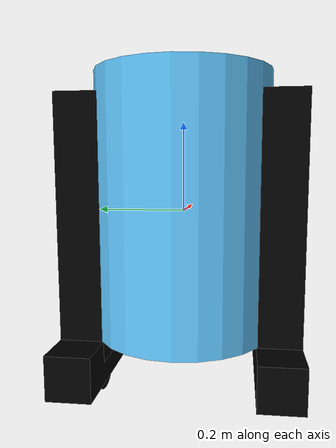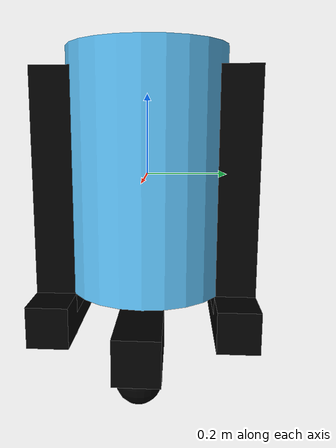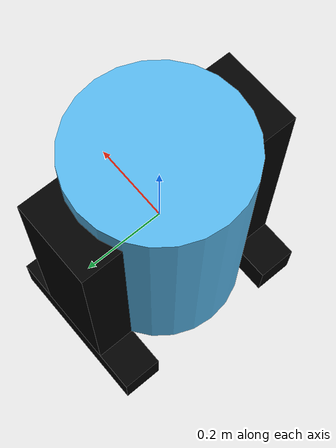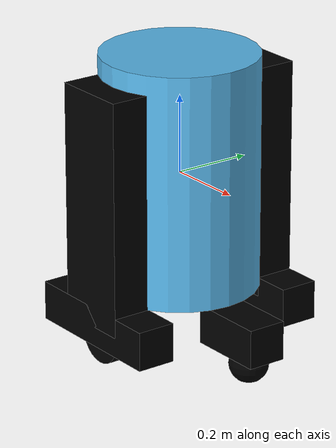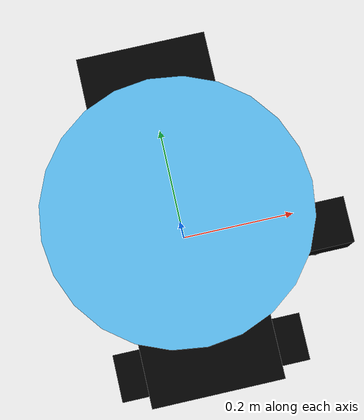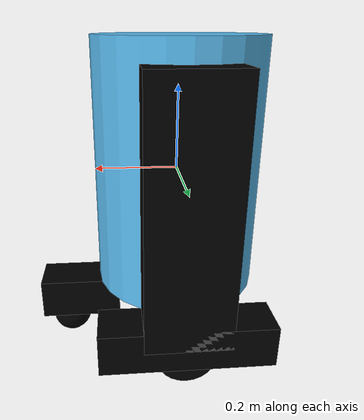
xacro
<?xml version="1.0" ?>
<robot name="r2d2" xmlns:xacro="http://ros.org/wiki/xacro">
    <xacro:include filename="$(find r2d2_description)/urdf/gazebo.xacro" />
    <xacro:include filename="$(find r2d2_description)/urdf/material.xacro" />
    <xacro:include filename="$(find r2d2_description)/urdf/macro.xacro" />

    <link name="base_footprint" />

    <joint name="base_joint" type="fixed">
        <parent link="base_footprint" />
        <child link="base_link" />
        <origin xyz="0.0 0.0 0.010" rpy="0 0 0" />
    </joint>

    <link name="base_link">
        <xacro:default_inertial mass="10" />
        <visual>
            <geometry>
                <cylinder radius="${body_radius}" length="${body_len}" />
            </geometry>
            <material name="body" />
        </visual>
        <collision>
            <geometry>
                <cylinder radius="${body_radius}" length="${body_len}" />
            </geometry>
        </collision>

        <!-- chassis base -->
        <visual>
            <origin xyz="0.25 0 -${leglen/2 + .05}" rpy="0 0 0" />
            <geometry>
                <box size="0.2 0.1 0.1" />
            </geometry>
            <material name="black" />
        </visual>

        <collision name="collision_chassis">
            <origin xyz="0.25 0 -${leglen/2 + .05}" rpy="0 0 0" />
            <geometry>
                <box size="0.2 ${baselen} 0.1" />
            </geometry>
        </collision>

        <!-- caster front -->
        <visual name="caster_front_visual">
            <origin xyz="0.28 0 -0.42" rpy=" 0 0 0" />
            <geometry>
                <sphere radius="0.05" />
            </geometry>
            <material name="black" />
        </visual>

        <collision name="caster_front_collision">
            <origin xyz="0.28 0 -0.42" rpy=" 0 0 0" />
            <geometry>
                <sphere radius="0.05" />
            </geometry>
            <surface>
                <friction>
                    <ode>
                        <mu>0</mu>
                        <mu2>0</mu2>
                        <slip1>1.0</slip1>
                        <slip2>1.0</slip2>
                    </ode>
                </friction>
            </surface>
        </collision>

    </link>

    <xacro:leg prefix="right" reflect="-1" />
    <xacro:leg prefix="left" reflect="1" />

</robot>

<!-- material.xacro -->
<robot name="material_properties" xmlns:xacro="http://ros.org/wiki/xacro">

    <!-- material colors -->
    <material name="white">
        <color rgba="1 1 1 1" />
    </material>

    <material name="black">
        <color rgba="0.0 0.0 0.0 1" />
    </material>

    <!-- material textures -->
    <material name="head">
        <texture filename="package://r2d2_description/media/materials/textures/head.jpg" />
    </material>

    <material name="eye">
        <texture filename="package://r2d2_description/media/materials/textures/eye.jpg" />
    </material>

    <material name="body">
        <texture filename="package://r2d2_description/media/materials/textures/body.png" />
    </material>

    <material name="leg">
        <texture filename="package://r2d2_description/media/materials/textures/leg.jpg" />
    </material>

</robot>

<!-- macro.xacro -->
<robot name="macroed" xmlns:xacro="http://ros.org/wiki/xacro">

    <xacro:property name="body_len" value="0.6" />
    <xacro:property name="body_radius" value="0.2" />
    <xacro:property name="leglen" value="0.6" />
    <xacro:property name="polelen" value="0.2" />
    <xacro:property name="baselen" value="0.4" />
    <xacro:property name="wheeldim" value="0.07" />

    <!-- default inertial -->
    <xacro:macro name="default_inertial" params="mass">
        <inertial>
            <origin xyz="0.0 0.0 0.0" rpy="0.0 0.0 0.0" />
            <mass value="${mass}" />
            <inertia ixx="1.0" ixy="0.0" ixz="0.0" iyy="1.0" iyz="0.0" izz="1.0" />
        </inertial>
    </xacro:macro>

    <!-- leg xacro -->
    <xacro:macro name="leg" params="prefix reflect">
        <link name="${prefix}_leg_link">
            <xacro:default_inertial mass="10" />

            <visual>
                <origin xyz="0 0 -${leglen/2}" rpy="0 ${pi/2} 0" />
                <geometry>
                    <box size="${leglen} 0.1 0.2" />
                </geometry>
                <material name="black" />
            </visual>
            <collision>
                <origin xyz="0 0 -${leglen/2}" rpy="0 ${pi/2} 0" />
                <geometry>
                    <box size="${leglen} 0.1 0.2" />
                </geometry>
            </collision>

            <visual>
                <origin xyz="0 0 ${-leglen}" />
                <geometry name="${prefix}_base">
                    <box size="${baselen} 0.1 0.1" />
                </geometry>
                <material name="black" />
            </visual>
            <collision name="${prefix}_base">
                <origin xyz="0 0 ${-leglen}" />
                <geometry>
                    <box size="${baselen} 0.1 0.1" />
                </geometry>
            </collision>

        </link>

        <joint name="${prefix}_leg_to_base_joint" type="fixed">
            <origin xyz="0 ${reflect*(body_radius+.02)} 0.25" />
            <parent link="base_link" />
            <child link="${prefix}_leg_link" />
        </joint>

        <xacro:wheel prefix="${prefix}" suffix="front" reflect="-1" />
    </xacro:macro>

    <!-- wheel xacro -->
    <xacro:macro name="wheel" params="prefix suffix reflect">
        <link name="${prefix}_wheel">
            <xacro:default_inertial mass="1" />
            <visual>
                <origin xyz="0.0 0.0 0.0" rpy="${pi/2} 0.0 0.0" />
                <geometry>
                    <cylinder radius="${wheeldim}" length="0.05" />
                </geometry>
                <material name="black" />
            </visual>
            <collision>
                <origin xyz="0.0 0.0 0.0" rpy="${pi/2} 0.0 0.0" />
                <geometry>
                    <cylinder radius="${wheeldim}" length="0.1" />
                </geometry>
            </collision>
        </link>

        <joint name="${prefix}_wheel_joint" type="continuous">
            <origin xyz="0 0 -${leglen+wheeldim/2}" rpy="0.0 0.0 0.0" />
            <parent link="${prefix}_leg_link" />
            <child link="${prefix}_wheel" />
            <axis xyz="0.0 1.0 0.0" />
        </joint>

        <gazebo reference="${prefix}_wheel">
            <mu1 value="200.0" />
            <mu2 value="100.0" />
            <kp value="10000000.0" />
            <kd value="1.0" />
            <material>Gazebo/Grey</material>
        </gazebo>
    </xacro:macro>

</robot>
